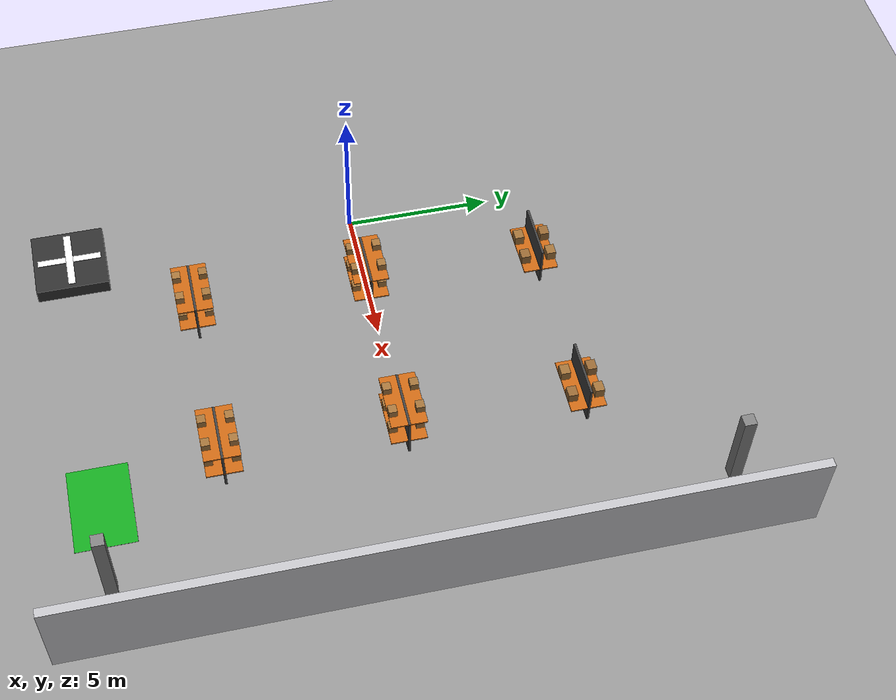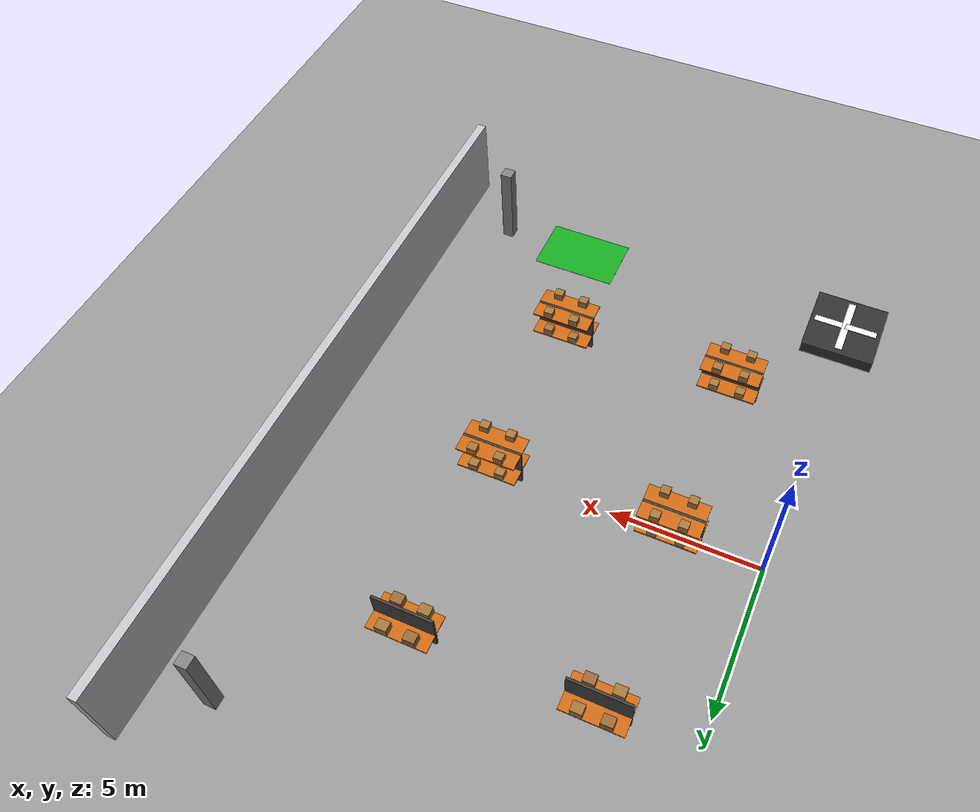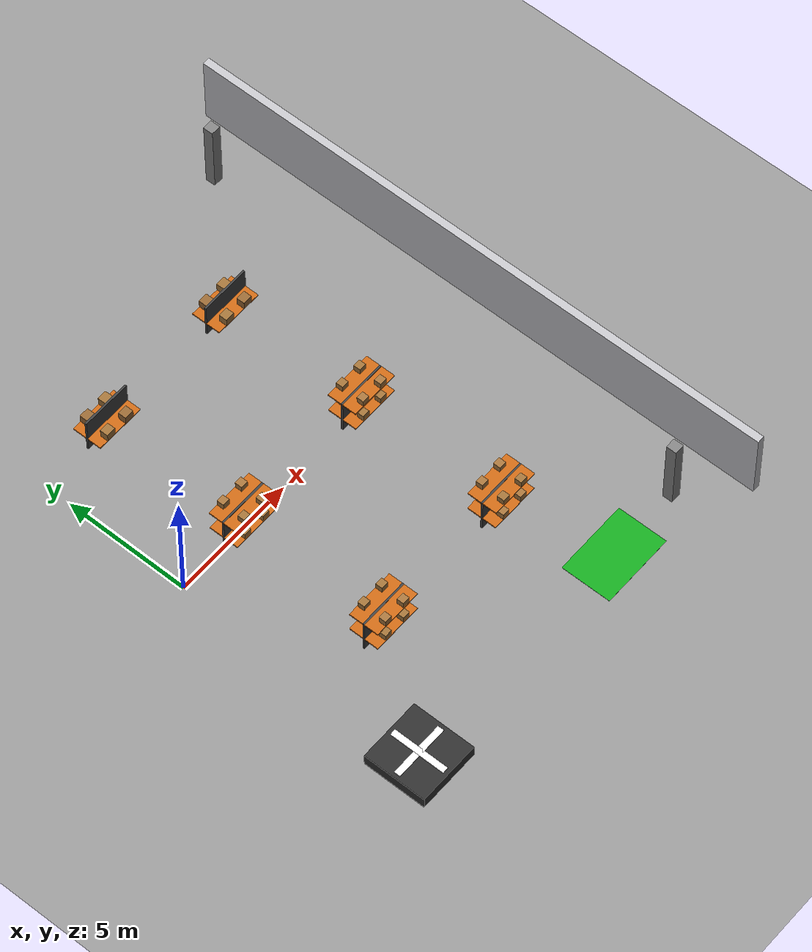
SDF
<sdf version="1.7">
 <world name="multi_robot_warehouse">
  <model name="ground_plane">
   <static>true</static>
   <link name="link">
    <collision name="collision">
     <geometry><plane><normal>0 0 1</normal><size>80 80</size></plane></geometry>
     <surface><friction><ode><mu>0.9</mu><mu2>0.9</mu2></ode></friction></surface>
    </collision>
    <visual name="visual">
     <geometry><plane><normal>0 0 1</normal><size>80 80</size></plane></geometry>
     <material>
      <ambient>0.50 0.50 0.50 1</ambient>
      <diffuse>0.58 0.58 0.58 1</diffuse>
      <specular>0.08 0.08 0.08 1</specular>
     </material>
    </visual>
   </link>
  </model>
  <model name="east_wall">
   <static>true</static>
   <pose>15 0 1.5 0 0 0</pose>
   <link name="link">
    <collision name="collision"><geometry><box><size>0.3 24 3</size></box></geometry></collision>
    <visual name="visual">
     <geometry><box><size>0.3 24 3</size></box></geometry>
     <material>
      <ambient>0.70 0.70 0.72 1</ambient>
      <diffuse>0.75 0.75 0.77 1</diffuse>
      <specular>0.15 0.15 0.15 1</specular>
     </material>
    </visual>
   </link>
  </model>
  <model name="pillar_ne">
   <static>true</static>
   <pose>13 10 1.5 0 0 0</pose>
   <link name="link">
    <collision name="collision"><geometry><box><size>0.4 0.4 3.0</size></box></geometry></collision>
    <visual name="visual">
     <geometry><box><size>0.4 0.4 3.0</size></box></geometry>
     <material>
      <ambient>0.45 0.45 0.45 1</ambient>
      <diffuse>0.50 0.50 0.50 1</diffuse>
      <specular>0.20 0.20 0.20 1</specular>
     </material>
    </visual>
   </link>
  </model>
  <model name="pillar_se">
   <static>true</static>
   <pose>13 -10 1.5 0 0 0</pose>
   <link name="link">
    <collision name="collision"><geometry><box><size>0.4 0.4 3.0</size></box></geometry></collision>
    <visual name="visual">
     <geometry><box><size>0.4 0.4 3.0</size></box></geometry>
     <material>
      <ambient>0.45 0.45 0.45 1</ambient>
      <diffuse>0.50 0.50 0.50 1</diffuse>
      <specular>0.20 0.20 0.20 1</specular>
     </material>
    </visual>
   </link>
  </model>
  <model name="shelf_1_3_frame">
   <static>true</static>
   <pose>3 6 0.75 0 0 0</pose>
   <link name="link">
    <collision name="collision"><geometry><box><size>2.0 0.08 1.5</size></box></geometry></collision>
    <visual name="visual">
     <geometry><box><size>2.0 0.08 1.5</size></box></geometry>
     <material>
      <ambient>0.20 0.20 0.20 1</ambient>
      <diffuse>0.25 0.25 0.25 1</diffuse>
      <specular>0.30 0.30 0.30 1</specular>
     </material>
    </visual>
   </link>
  </model>
  <model name="shelf_1_3_board_low">
   <static>true</static>
   <pose>3 6 0.6 0 0 0</pose>
   <link name="link">
    <visual name="visual">
     <geometry><box><size>2.0 1.2 0.05</size></box></geometry>
     <material>
      <ambient>0.72 0.35 0.05 1</ambient>
      <diffuse>0.78 0.40 0.08 1</diffuse>
      <specular>0.20 0.12 0.04 1</specular>
     </material>
    </visual>
    <collision name="collision"><geometry><box><size>2.0 1.2 0.05</size></box></geometry></collision>
   </link>
  </model>
  <model name="shelf_1_4_frame">
   <static>true</static>
   <pose>9 6 0.75 0 0 0</pose>
   <link name="link">
    <collision name="collision"><geometry><box><size>2.0 0.08 1.5</size></box></geometry></collision>
    <visual name="visual">
     <geometry><box><size>2.0 0.08 1.5</size></box></geometry>
     <material>
      <ambient>0.20 0.20 0.20 1</ambient>
      <diffuse>0.25 0.25 0.25 1</diffuse>
      <specular>0.30 0.30 0.30 1</specular>
     </material>
    </visual>
   </link>
  </model>
  <model name="shelf_1_4_board_low">
   <static>true</static>
   <pose>9 6 0.6 0 0 0</pose>
   <link name="link">
    <visual name="visual">
     <geometry><box><size>2.0 1.2 0.05</size></box></geometry>
     <material>
      <ambient>0.72 0.35 0.05 1</ambient>
      <diffuse>0.78 0.40 0.08 1</diffuse>
      <specular>0.20 0.12 0.04 1</specular>
     </material>
    </visual>
    <collision name="collision"><geometry><box><size>2.0 1.2 0.05</size></box></geometry></collision>
   </link>
  </model>
  <model name="bigbox_1_3_ll">
   <static>true</static>
   <pose>2.55 5.55 0.795 0 0 0</pose>
   <link name="bigbox_1_3_ll">
    <visual name="visual">
     <geometry><box><size>0.38 0.32 0.34</size></box></geometry>
     <material>
      <ambient>0.55 0.38 0.18 1</ambient>
      <diffuse>0.62 0.44 0.22 1</diffuse>
      <specular>0.05 0.04 0.02 1</specular>
     </material>
    </visual>
    <collision name="collision"><geometry><box><size>0.38 0.32 0.34</size></box></geometry></collision>
   </link>
  </model>
  <model name="bigbox_1_3_lr">
   <static>true</static>
   <pose>2.55 6.45 0.795 0 0 0</pose>
   <link name="bigbox_1_3_lr">
    <visual name="visual">
     <geometry><box><size>0.38 0.32 0.34</size></box></geometry>
     <material>
      <ambient>0.5 0.35 0.15 1</ambient>
      <diffuse>0.58 0.4 0.2 1</diffuse>
      <specular>0.05 0.04 0.02 1</specular>
     </material>
    </visual>
    <collision name="collision"><geometry><box><size>0.38 0.32 0.34</size></box></geometry></collision>
   </link>
  </model>
  <model name="bigbox_1_3_rl">
   <static>true</static>
   <pose>3.45 5.55 0.795 0 0 0</pose>
   <link name="bigbox_1_3_rl">
    <visual name="visual">
     <geometry><box><size>0.38 0.32 0.34</size></box></geometry>
     <material>
      <ambient>0.5 0.35 0.15 1</ambient>
      <diffuse>0.58 0.4 0.2 1</diffuse>
      <specular>0.05 0.04 0.02 1</specular>
     </material>
    </visual>
    <collision name="collision"><geometry><box><size>0.38 0.32 0.34</size></box></geometry></collision>
   </link>
  </model>
  <model name="bigbox_1_3_rr">
   <static>true</static>
   <pose>3.45 6.45 0.795 0 0 0</pose>
   <link name="bigbox_1_3_rr">
    <visual name="visual">
     <geometry><box><size>0.38 0.32 0.34</size></box></geometry>
     <material>
      <ambient>0.55 0.38 0.18 1</ambient>
      <diffuse>0.62 0.44 0.22 1</diffuse>
      <specular>0.05 0.04 0.02 1</specular>
     </material>
    </visual>
    <collision name="collision"><geometry><box><size>0.38 0.32 0.34</size></box></geometry></collision>
   </link>
  </model>
  <model name="bigbox_1_4_ll">
   <static>true</static>
   <pose>8.55 5.55 0.795 0 0 0</pose>
   <link name="bigbox_1_4_ll">
    <visual name="visual">
     <geometry><box><size>0.38 0.32 0.34</size></box></geometry>
     <material>
      <ambient>0.55 0.38 0.18 1</ambient>
      <diffuse>0.62 0.44 0.22 1</diffuse>
      <specular>0.05 0.04 0.02 1</specular>
     </material>
    </visual>
    <collision name="collision"><geometry><box><size>0.38 0.32 0.34</size></box></geometry></collision>
   </link>
  </model>
  <model name="bigbox_1_4_lr">
   <static>true</static>
   <pose>8.55 6.45 0.795 0 0 0</pose>
   <link name="bigbox_1_4_lr">
    <visual name="visual">
     <geometry><box><size>0.38 0.32 0.34</size></box></geometry>
     <material>
      <ambient>0.5 0.35 0.15 1</ambient>
      <diffuse>0.58 0.4 0.2 1</diffuse>
      <specular>0.05 0.04 0.02 1</specular>
     </material>
    </visual>
    <collision name="collision"><geometry><box><size>0.38 0.32 0.34</size></box></geometry></collision>
   </link>
  </model>
  <model name="bigbox_1_4_rl">
   <static>true</static>
   <pose>9.45 5.55 0.795 0 0 0</pose>
   <link name="bigbox_1_4_rl">
    <visual name="visual">
     <geometry><box><size>0.38 0.32 0.34</size></box></geometry>
     <material>
      <ambient>0.5 0.35 0.15 1</ambient>
      <diffuse>0.58 0.4 0.2 1</diffuse>
      <specular>0.05 0.04 0.02 1</specular>
     </material>
    </visual>
    <collision name="collision"><geometry><box><size>0.38 0.32 0.34</size></box></geometry></collision>
   </link>
  </model>
  <model name="bigbox_1_4_rr">
   <static>true</static>
   <pose>9.45 6.45 0.795 0 0 0</pose>
   <link name="bigbox_1_4_rr">
    <visual name="visual">
     <geometry><box><size>0.38 0.32 0.34</size></box></geometry>
     <material>
      <ambient>0.55 0.38 0.18 1</ambient>
      <diffuse>0.62 0.44 0.22 1</diffuse>
      <specular>0.05 0.04 0.02 1</specular>
     </material>
    </visual>
    <collision name="collision"><geometry><box><size>0.38 0.32 0.34</size></box></geometry></collision>
   </link>
  </model>
  <model name="shelf_2_3_frame">
   <static>true</static>
   <pose>3 0 0.765 0 0 0</pose>
   <link name="link">
    <collision name="collision"><geometry><box><size>2.0 0.08 1.53</size></box></geometry></collision>
    <visual name="visual">
     <geometry><box><size>2.0 0.08 1.53</size></box></geometry>
     <material>
      <ambient>0.20 0.20 0.20 1</ambient>
      <diffuse>0.25 0.25 0.25 1</diffuse>
      <specular>0.30 0.30 0.30 1</specular>
     </material>
    </visual>
   </link>
  </model>
  <model name="shelf_2_3_board_low">
   <static>true</static>
   <pose>3 0 0.6 0 0 0</pose>
   <link name="link">
    <visual name="visual">
     <geometry><box><size>2.0 1.2 0.05</size></box></geometry>
     <material>
      <ambient>0.72 0.35 0.05 1</ambient>
      <diffuse>0.78 0.40 0.08 1</diffuse>
      <specular>0.20 0.12 0.04 1</specular>
     </material>
    </visual>
    <collision name="collision"><geometry><box><size>2.0 1.2 0.05</size></box></geometry></collision>
   </link>
  </model>
  <model name="box_2_3_low_la">
   <static>true</static>
   <pose>2.55 -0.45 0.755 0 0 0.0</pose>
   <link name="box_2_3_low_la">
    <visual name="visual">
     <geometry><box><size>0.3 0.28 0.26</size></box></geometry>
     <material>
      <ambient>0.58 0.4 0.19 1</ambient>
      <diffuse>0.64 0.45 0.23 1</diffuse>
      <specular>0.05 0.04 0.02 1</specular>
     </material>
    </visual>
    <collision name="collision"><geometry><box><size>0.3 0.28 0.26</size></box></geometry></collision>
   </link>
  </model>
  <model name="box_2_3_low_lb">
   <static>true</static>
   <pose>2.55 0.45 0.755 0 0 0.0</pose>
   <link name="box_2_3_low_lb">
    <visual name="visual">
     <geometry><box><size>0.3 0.28 0.26</size></box></geometry>
     <material>
      <ambient>0.55 0.38 0.18 1</ambient>
      <diffuse>0.62 0.44 0.22 1</diffuse>
      <specular>0.05 0.04 0.02 1</specular>
     </material>
    </visual>
    <collision name="collision"><geometry><box><size>0.3 0.28 0.26</size></box></geometry></collision>
   </link>
  </model>
  <model name="box_2_3_low_ra">
   <static>true</static>
   <pose>3.45 -0.45 0.755 0 0 0.0</pose>
   <link name="box_2_3_low_ra">
    <visual name="visual">
     <geometry><box><size>0.3 0.28 0.26</size></box></geometry>
     <material>
      <ambient>0.58 0.4 0.19 1</ambient>
      <diffuse>0.64 0.45 0.23 1</diffuse>
      <specular>0.05 0.04 0.02 1</specular>
     </material>
    </visual>
    <collision name="collision"><geometry><box><size>0.3 0.28 0.26</size></box></geometry></collision>
   </link>
  </model>
  <model name="box_2_3_low_rb">
   <static>true</static>
   <pose>3.45 0.45 0.755 0 0 0.0</pose>
   <link name="box_2_3_low_rb">
    <visual name="visual">
     <geometry><box><size>0.3 0.28 0.26</size></box></geometry>
     <material>
      <ambient>0.55 0.38 0.18 1</ambient>
      <diffuse>0.62 0.44 0.22 1</diffuse>
      <specular>0.05 0.04 0.02 1</specular>
     </material>
    </visual>
    <collision name="collision"><geometry><box><size>0.3 0.28 0.26</size></box></geometry></collision>
   </link>
  </model>
  <model name="shelf_2_3_board_high">
   <static>true</static>
   <pose>3 0 1.5 0 0 0</pose>
   <link name="link">
    <visual name="visual">
     <geometry><box><size>2.0 1.2 0.05</size></box></geometry>
     <material>
      <ambient>0.72 0.35 0.05 1</ambient>
      <diffuse>0.78 0.40 0.08 1</diffuse>
      <specular>0.20 0.12 0.04 1</specular>
     </material>
    </visual>
    <collision name="collision"><geometry><box><size>2.0 1.2 0.05</size></box></geometry></collision>
   </link>
  </model>
  <model name="box_2_3_high_la">
   <static>true</static>
   <pose>2.55 -0.45 1.655 0 0 0.0</pose>
   <link name="box_2_3_high_la">
    <visual name="visual">
     <geometry><box><size>0.3 0.28 0.26</size></box></geometry>
     <material>
      <ambient>0.55 0.38 0.18 1</ambient>
      <diffuse>0.62 0.44 0.22 1</diffuse>
      <specular>0.05 0.04 0.02 1</specular>
     </material>
    </visual>
   </link>
  </model>
  <model name="box_2_3_high_lb">
   <static>true</static>
   <pose>2.55 0.45 1.655 0 0 0.0</pose>
   <link name="box_2_3_high_lb">
    <visual name="visual">
     <geometry><box><size>0.3 0.28 0.26</size></box></geometry>
     <material>
      <ambient>0.58 0.4 0.19 1</ambient>
      <diffuse>0.64 0.45 0.23 1</diffuse>
      <specular>0.05 0.04 0.02 1</specular>
     </material>
    </visual>
   </link>
  </model>
  <model name="box_2_3_high_ra">
   <static>true</static>
   <pose>3.45 -0.45 1.655 0 0 0.0</pose>
   <link name="box_2_3_high_ra">
    <visual name="visual">
     <geometry><box><size>0.3 0.28 0.26</size></box></geometry>
     <material>
      <ambient>0.55 0.38 0.18 1</ambient>
      <diffuse>0.62 0.44 0.22 1</diffuse>
      <specular>0.05 0.04 0.02 1</specular>
     </material>
    </visual>
   </link>
  </model>
  <model name="box_2_3_high_rb">
   <static>true</static>
   <pose>3.45 0.45 1.655 0 0 0.0</pose>
   <link name="box_2_3_high_rb">
    <visual name="visual">
     <geometry><box><size>0.3 0.28 0.26</size></box></geometry>
     <material>
      <ambient>0.58 0.4 0.19 1</ambient>
      <diffuse>0.64 0.45 0.23 1</diffuse>
      <specular>0.05 0.04 0.02 1</specular>
     </material>
    </visual>
   </link>
  </model>
  <model name="shelf_2_4_frame">
   <static>true</static>
   <pose>9 0 0.765 0 0 0</pose>
   <link name="link">
    <collision name="collision"><geometry><box><size>2.0 0.08 1.53</size></box></geometry></collision>
    <visual name="visual">
     <geometry><box><size>2.0 0.08 1.53</size></box></geometry>
     <material>
      <ambient>0.20 0.20 0.20 1</ambient>
      <diffuse>0.25 0.25 0.25 1</diffuse>
      <specular>0.30 0.30 0.30 1</specular>
     </material>
    </visual>
   </link>
  </model>
  <model name="shelf_2_4_board_low">
   <static>true</static>
   <pose>9 0 0.6 0 0 0</pose>
   <link name="link">
    <visual name="visual">
     <geometry><box><size>2.0 1.2 0.05</size></box></geometry>
     <material>
      <ambient>0.72 0.35 0.05 1</ambient>
      <diffuse>0.78 0.40 0.08 1</diffuse>
      <specular>0.20 0.12 0.04 1</specular>
     </material>
    </visual>
    <collision name="collision"><geometry><box><size>2.0 1.2 0.05</size></box></geometry></collision>
   </link>
  </model>
  <model name="box_2_4_low_la">
   <static>true</static>
   <pose>8.55 -0.45 0.755 0 0 0.0</pose>
   <link name="box_2_4_low_la">
    <visual name="visual">
     <geometry><box><size>0.3 0.28 0.26</size></box></geometry>
     <material>
      <ambient>0.55 0.38 0.18 1</ambient>
      <diffuse>0.62 0.44 0.22 1</diffuse>
      <specular>0.05 0.04 0.02 1</specular>
     </material>
    </visual>
    <collision name="collision"><geometry><box><size>0.3 0.28 0.26</size></box></geometry></collision>
   </link>
  </model>
  <model name="box_2_4_low_lb">
   <static>true</static>
   <pose>8.55 0.45 0.755 0 0 0.0</pose>
   <link name="box_2_4_low_lb">
    <visual name="visual">
     <geometry><box><size>0.3 0.28 0.26</size></box></geometry>
     <material>
      <ambient>0.58 0.4 0.19 1</ambient>
      <diffuse>0.64 0.45 0.23 1</diffuse>
      <specular>0.05 0.04 0.02 1</specular>
     </material>
    </visual>
    <collision name="collision"><geometry><box><size>0.3 0.28 0.26</size></box></geometry></collision>
   </link>
  </model>
  <model name="box_2_4_low_ra">
   <static>true</static>
   <pose>9.45 -0.45 0.755 0 0 0.0</pose>
   <link name="box_2_4_low_ra">
    <visual name="visual">
     <geometry><box><size>0.3 0.28 0.26</size></box></geometry>
     <material>
      <ambient>0.55 0.38 0.18 1</ambient>
      <diffuse>0.62 0.44 0.22 1</diffuse>
      <specular>0.05 0.04 0.02 1</specular>
     </material>
    </visual>
    <collision name="collision"><geometry><box><size>0.3 0.28 0.26</size></box></geometry></collision>
   </link>
  </model>
  <model name="box_2_4_low_rb">
   <static>true</static>
   <pose>9.45 0.45 0.755 0 0 0.0</pose>
   <link name="box_2_4_low_rb">
    <visual name="visual">
     <geometry><box><size>0.3 0.28 0.26</size></box></geometry>
     <material>
      <ambient>0.58 0.4 0.19 1</ambient>
      <diffuse>0.64 0.45 0.23 1</diffuse>
      <specular>0.05 0.04 0.02 1</specular>
     </material>
    </visual>
    <collision name="collision"><geometry><box><size>0.3 0.28 0.26</size></box></geometry></collision>
   </link>
  </model>
  <model name="shelf_2_4_board_high">
   <static>true</static>
   <pose>9 0 1.5 0 0 0</pose>
   <link name="link">
    <visual name="visual">
     <geometry><box><size>2.0 1.2 0.05</size></box></geometry>
     <material>
      <ambient>0.72 0.35 0.05 1</ambient>
      <diffuse>0.78 0.40 0.08 1</diffuse>
      <specular>0.20 0.12 0.04 1</specular>
     </material>
    </visual>
    <collision name="collision"><geometry><box><size>2.0 1.2 0.05</size></box></geometry></collision>
   </link>
  </model>
  <model name="box_2_4_high_la">
   <static>true</static>
   <pose>8.55 -0.45 1.655 0 0 0.0</pose>
   <link name="box_2_4_high_la">
    <visual name="visual">
     <geometry><box><size>0.3 0.28 0.26</size></box></geometry>
     <material>
      <ambient>0.58 0.4 0.19 1</ambient>
      <diffuse>0.64 0.45 0.23 1</diffuse>
      <specular>0.05 0.04 0.02 1</specular>
     </material>
    </visual>
   </link>
  </model>
  <model name="box_2_4_high_lb">
   <static>true</static>
   <pose>8.55 0.45 1.655 0 0 0.0</pose>
   <link name="box_2_4_high_lb">
    <visual name="visual">
     <geometry><box><size>0.3 0.28 0.26</size></box></geometry>
     <material>
      <ambient>0.55 0.38 0.18 1</ambient>
      <diffuse>0.62 0.44 0.22 1</diffuse>
      <specular>0.05 0.04 0.02 1</specular>
     </material>
    </visual>
   </link>
  </model>
  <model name="box_2_4_high_ra">
   <static>true</static>
   <pose>9.45 -0.45 1.655 0 0 0.0</pose>
   <link name="box_2_4_high_ra">
    <visual name="visual">
     <geometry><box><size>0.3 0.28 0.26</size></box></geometry>
     <material>
      <ambient>0.58 0.4 0.19 1</ambient>
      <diffuse>0.64 0.45 0.23 1</diffuse>
      <specular>0.05 0.04 0.02 1</specular>
     </material>
    </visual>
   </link>
  </model>
  <model name="box_2_4_high_rb">
   <static>true</static>
   <pose>9.45 0.45 1.655 0 0 0.0</pose>
   <link name="box_2_4_high_rb">
    <visual name="visual">
     <geometry><box><size>0.3 0.28 0.26</size></box></geometry>
     <material>
      <ambient>0.55 0.38 0.18 1</ambient>
      <diffuse>0.62 0.44 0.22 1</diffuse>
      <specular>0.05 0.04 0.02 1</specular>
     </material>
    </visual>
   </link>
  </model>
  <model name="shelf_3_3_frame">
   <static>true</static>
   <pose>3 -6 0.765 0 0 0</pose>
   <link name="link">
    <collision name="collision"><geometry><box><size>2.0 0.08 1.53</size></box></geometry></collision>
    <visual name="visual">
     <geometry><box><size>2.0 0.08 1.53</size></box></geometry>
     <material>
      <ambient>0.20 0.20 0.20 1</ambient>
      <diffuse>0.25 0.25 0.25 1</diffuse>
      <specular>0.30 0.30 0.30 1</specular>
     </material>
    </visual>
   </link>
  </model>
  <model name="shelf_3_3_board_low">
   <static>true</static>
   <pose>3 -6 0.6 0 0 0</pose>
   <link name="link">
    <visual name="visual">
     <geometry><box><size>2.0 1.2 0.05</size></box></geometry>
     <material>
      <ambient>0.72 0.35 0.05 1</ambient>
      <diffuse>0.78 0.40 0.08 1</diffuse>
      <specular>0.20 0.12 0.04 1</specular>
     </material>
    </visual>
    <collision name="collision"><geometry><box><size>2.0 1.2 0.05</size></box></geometry></collision>
   </link>
  </model>
  <model name="box_3_3_low_la">
   <static>true</static>
   <pose>2.55 -6.45 0.755 0 0 0.0</pose>
   <link name="box_3_3_low_la">
    <visual name="visual">
     <geometry><box><size>0.3 0.28 0.26</size></box></geometry>
     <material>
      <ambient>0.55 0.38 0.18 1</ambient>
      <diffuse>0.62 0.44 0.22 1</diffuse>
      <specular>0.05 0.04 0.02 1</specular>
     </material>
    </visual>
    <collision name="collision"><geometry><box><size>0.3 0.28 0.26</size></box></geometry></collision>
   </link>
  </model>
  <model name="box_3_3_low_lb">
   <static>true</static>
   <pose>2.55 -5.55 0.755 0 0 0.0</pose>
   <link name="box_3_3_low_lb">
    <visual name="visual">
     <geometry><box><size>0.3 0.28 0.26</size></box></geometry>
     <material>
      <ambient>0.58 0.4 0.19 1</ambient>
      <diffuse>0.64 0.45 0.23 1</diffuse>
      <specular>0.05 0.04 0.02 1</specular>
     </material>
    </visual>
    <collision name="collision"><geometry><box><size>0.3 0.28 0.26</size></box></geometry></collision>
   </link>
  </model>
  <model name="box_3_3_low_ra">
   <static>true</static>
   <pose>3.45 -6.45 0.755 0 0 0.0</pose>
   <link name="box_3_3_low_ra">
    <visual name="visual">
     <geometry><box><size>0.3 0.28 0.26</size></box></geometry>
     <material>
      <ambient>0.55 0.38 0.18 1</ambient>
      <diffuse>0.62 0.44 0.22 1</diffuse>
      <specular>0.05 0.04 0.02 1</specular>
     </material>
    </visual>
    <collision name="collision"><geometry><box><size>0.3 0.28 0.26</size></box></geometry></collision>
   </link>
  </model>
  <model name="box_3_3_low_rb">
   <static>true</static>
   <pose>3.45 -5.55 0.755 0 0 0.0</pose>
   <link name="box_3_3_low_rb">
    <visual name="visual">
     <geometry><box><size>0.3 0.28 0.26</size></box></geometry>
     <material>
      <ambient>0.58 0.4 0.19 1</ambient>
      <diffuse>0.64 0.45 0.23 1</diffuse>
      <specular>0.05 0.04 0.02 1</specular>
     </material>
    </visual>
    <collision name="collision"><geometry><box><size>0.3 0.28 0.26</size></box></geometry></collision>
   </link>
  </model>
  <model name="shelf_3_3_board_high">
   <static>true</static>
   <pose>3 -6 1.5 0 0 0</pose>
   <link name="link">
    <visual name="visual">
     <geometry><box><size>2.0 1.2 0.05</size></box></geometry>
     <material>
      <ambient>0.72 0.35 0.05 1</ambient>
      <diffuse>0.78 0.40 0.08 1</diffuse>
      <specular>0.20 0.12 0.04 1</specular>
     </material>
    </visual>
    <collision name="collision"><geometry><box><size>2.0 1.2 0.05</size></box></geometry></collision>
   </link>
  </model>
  <model name="box_3_3_high_la">
   <static>true</static>
   <pose>2.55 -6.45 1.655 0 0 0.0</pose>
   <link name="box_3_3_high_la">
    <visual name="visual">
     <geometry><box><size>0.3 0.28 0.26</size></box></geometry>
     <material>
      <ambient>0.58 0.4 0.19 1</ambient>
      <diffuse>0.64 0.45 0.23 1</diffuse>
      <specular>0.05 0.04 0.02 1</specular>
     </material>
    </visual>
   </link>
  </model>
  <model name="box_3_3_high_lb">
   <static>true</static>
   <pose>2.55 -5.55 1.655 0 0 0.0</pose>
   <link name="box_3_3_high_lb">
    <visual name="visual">
     <geometry><box><size>0.3 0.28 0.26</size></box></geometry>
     <material>
      <ambient>0.55 0.38 0.18 1</ambient>
      <diffuse>0.62 0.44 0.22 1</diffuse>
      <specular>0.05 0.04 0.02 1</specular>
     </material>
    </visual>
   </link>
  </model>
  <model name="box_3_3_high_ra">
   <static>true</static>
   <pose>3.45 -6.45 1.655 0 0 0.0</pose>
   <link name="box_3_3_high_ra">
    <visual name="visual">
     <geometry><box><size>0.3 0.28 0.26</size></box></geometry>
     <material>
      <ambient>0.58 0.4 0.19 1</ambient>
      <diffuse>0.64 0.45 0.23 1</diffuse>
      <specular>0.05 0.04 0.02 1</specular>
     </material>
    </visual>
   </link>
  </model>
  <model name="box_3_3_high_rb">
   <static>true</static>
   <pose>3.45 -5.55 1.655 0 0 0.0</pose>
   <link name="box_3_3_high_rb">
    <visual name="visual">
     <geometry><box><size>0.3 0.28 0.26</size></box></geometry>
     <material>
      <ambient>0.55 0.38 0.18 1</ambient>
      <diffuse>0.62 0.44 0.22 1</diffuse>
      <specular>0.05 0.04 0.02 1</specular>
     </material>
    </visual>
   </link>
  </model>
  <model name="shelf_3_4_frame">
   <static>true</static>
   <pose>9 -6 0.765 0 0 0</pose>
   <link name="link">
    <collision name="collision"><geometry><box><size>2.0 0.08 1.53</size></box></geometry></collision>
    <visual name="visual">
     <geometry><box><size>2.0 0.08 1.53</size></box></geometry>
     <material>
      <ambient>0.20 0.20 0.20 1</ambient>
      <diffuse>0.25 0.25 0.25 1</diffuse>
      <specular>0.30 0.30 0.30 1</specular>
     </material>
    </visual>
   </link>
  </model>
  <model name="shelf_3_4_board_low">
   <static>true</static>
   <pose>9 -6 0.6 0 0 0</pose>
   <link name="link">
    <visual name="visual">
     <geometry><box><size>2.0 1.2 0.05</size></box></geometry>
     <material>
      <ambient>0.72 0.35 0.05 1</ambient>
      <diffuse>0.78 0.40 0.08 1</diffuse>
      <specular>0.20 0.12 0.04 1</specular>
     </material>
    </visual>
    <collision name="collision"><geometry><box><size>2.0 1.2 0.05</size></box></geometry></collision>
   </link>
  </model>
  <model name="box_3_4_low_la">
   <static>true</static>
   <pose>8.55 -6.45 0.755 0 0 0.0</pose>
   <link name="box_3_4_low_la">
    <visual name="visual">
     <geometry><box><size>0.3 0.28 0.26</size></box></geometry>
     <material>
      <ambient>0.58 0.4 0.19 1</ambient>
      <diffuse>0.64 0.45 0.23 1</diffuse>
      <specular>0.05 0.04 0.02 1</specular>
     </material>
    </visual>
    <collision name="collision"><geometry><box><size>0.3 0.28 0.26</size></box></geometry></collision>
   </link>
  </model>
  <model name="box_3_4_low_lb">
   <static>true</static>
   <pose>8.55 -5.55 0.755 0 0 0.0</pose>
   <link name="box_3_4_low_lb">
    <visual name="visual">
     <geometry><box><size>0.3 0.28 0.26</size></box></geometry>
     <material>
      <ambient>0.55 0.38 0.18 1</ambient>
      <diffuse>0.62 0.44 0.22 1</diffuse>
      <specular>0.05 0.04 0.02 1</specular>
     </material>
    </visual>
    <collision name="collision"><geometry><box><size>0.3 0.28 0.26</size></box></geometry></collision>
   </link>
  </model>
  <model name="box_3_4_low_ra">
   <static>true</static>
   <pose>9.45 -6.45 0.755 0 0 0.0</pose>
   <link name="box_3_4_low_ra">
    <visual name="visual">
     <geometry><box><size>0.3 0.28 0.26</size></box></geometry>
     <material>
      <ambient>0.58 0.4 0.19 1</ambient>
      <diffuse>0.64 0.45 0.23 1</diffuse>
      <specular>0.05 0.04 0.02 1</specular>
     </material>
    </visual>
    <collision name="collision"><geometry><box><size>0.3 0.28 0.26</size></box></geometry></collision>
   </link>
  </model>
  <model name="box_3_4_low_rb">
   <static>true</static>
   <pose>9.45 -5.55 0.755 0 0 0.0</pose>
   <link name="box_3_4_low_rb">
    <visual name="visual">
     <geometry><box><size>0.3 0.28 0.26</size></box></geometry>
     <material>
      <ambient>0.55 0.38 0.18 1</ambient>
      <diffuse>0.62 0.44 0.22 1</diffuse>
      <specular>0.05 0.04 0.02 1</specular>
     </material>
    </visual>
    <collision name="collision"><geometry><box><size>0.3 0.28 0.26</size></box></geometry></collision>
   </link>
  </model>
  <model name="shelf_3_4_board_high">
   <static>true</static>
   <pose>9 -6 1.5 0 0 0</pose>
   <link name="link">
    <visual name="visual">
     <geometry><box><size>2.0 1.2 0.05</size></box></geometry>
     <material>
      <ambient>0.72 0.35 0.05 1</ambient>
      <diffuse>0.78 0.40 0.08 1</diffuse>
      <specular>0.20 0.12 0.04 1</specular>
     </material>
    </visual>
    <collision name="collision"><geometry><box><size>2.0 1.2 0.05</size></box></geometry></collision>
   </link>
  </model>
  <model name="box_3_4_high_la">
   <static>true</static>
   <pose>8.55 -6.45 1.655 0 0 0.0</pose>
   <link name="box_3_4_high_la">
    <visual name="visual">
     <geometry><box><size>0.3 0.28 0.26</size></box></geometry>
     <material>
      <ambient>0.55 0.38 0.18 1</ambient>
      <diffuse>0.62 0.44 0.22 1</diffuse>
      <specular>0.05 0.04 0.02 1</specular>
     </material>
    </visual>
   </link>
  </model>
  <model name="box_3_4_high_lb">
   <static>true</static>
   <pose>8.55 -5.55 1.655 0 0 0.0</pose>
   <link name="box_3_4_high_lb">
    <visual name="visual">
     <geometry><box><size>0.3 0.28 0.26</size></box></geometry>
     <material>
      <ambient>0.58 0.4 0.19 1</ambient>
      <diffuse>0.64 0.45 0.23 1</diffuse>
      <specular>0.05 0.04 0.02 1</specular>
     </material>
    </visual>
   </link>
  </model>
  <model name="box_3_4_high_ra">
   <static>true</static>
   <pose>9.45 -6.45 1.655 0 0 0.0</pose>
   <link name="box_3_4_high_ra">
    <visual name="visual">
     <geometry><box><size>0.3 0.28 0.26</size></box></geometry>
     <material>
      <ambient>0.55 0.38 0.18 1</ambient>
      <diffuse>0.62 0.44 0.22 1</diffuse>
      <specular>0.05 0.04 0.02 1</specular>
     </material>
    </visual>
   </link>
  </model>
  <model name="box_3_4_high_rb">
   <static>true</static>
   <pose>9.45 -5.55 1.655 0 0 0.0</pose>
   <link name="box_3_4_high_rb">
    <visual name="visual">
     <geometry><box><size>0.3 0.28 0.26</size></box></geometry>
     <material>
      <ambient>0.58 0.4 0.19 1</ambient>
      <diffuse>0.64 0.45 0.23 1</diffuse>
      <specular>0.05 0.04 0.02 1</specular>
     </material>
    </visual>
   </link>
  </model>
  <model name="delivery_station_base">
   <static>true</static>
   <pose>10 -10 0.005 0 0 0</pose>
   <link name="link">
    <collision name="collision"><geometry><box><size>3.0 2.0 0.01</size></box></geometry></collision>
    <visual name="visual">
     <geometry><box><size>3.0 2.0 0.01</size></box></geometry>
     <material>
      <ambient>0.05 0.55 0.10 1</ambient>
      <diffuse>0.08 0.65 0.12 1</diffuse>
      <specular>0.20 0.40 0.20 1</specular>
     </material>
    </visual>
   </link>
  </model>
  <model name="drone_pad_base">
   <static>true</static>
   <pose>0 -10 0.25 0 0 0</pose>
   <link name="link">
    <collision name="collision"><geometry><box><size>2.5 2.5 0.5</size></box></geometry></collision>
    <visual name="visual">
     <geometry><box><size>2.5 2.5 0.5</size></box></geometry>
     <material>
      <ambient>0.15 0.15 0.15 1</ambient>
      <diffuse>0.18 0.18 0.18 1</diffuse>
      <specular>0.25 0.25 0.25 1</specular>
     </material>
    </visual>
   </link>
  </model>
  <model name="drone_pad_cross_h">
   <static>true</static>
   <pose>0 -10 0.51 0 0 0</pose>
   <link name="link">
    <visual name="visual">
     <geometry><box><size>2.2 0.25 0.02</size></box></geometry>
     <material><ambient>0.95 0.95 0.95 1</ambient><diffuse>1.0 1.0 1.0 1</diffuse></material>
    </visual>
   </link>
  </model>
  <model name="drone_pad_cross_v">
   <static>true</static>
   <pose>0 -10 0.51 0 0 1.5708</pose>
   <link name="link">
    <visual name="visual">
     <geometry><box><size>2.2 0.25 0.02</size></box></geometry>
     <material><ambient>0.95 0.95 0.95 1</ambient><diffuse>1.0 1.0 1.0 1</diffuse></material>
    </visual>
   </link>
  </model>
 </world>
</sdf>
